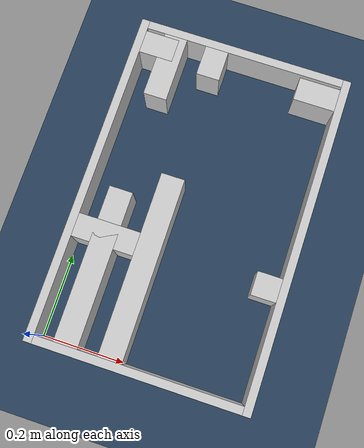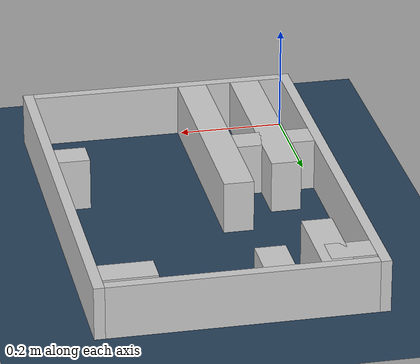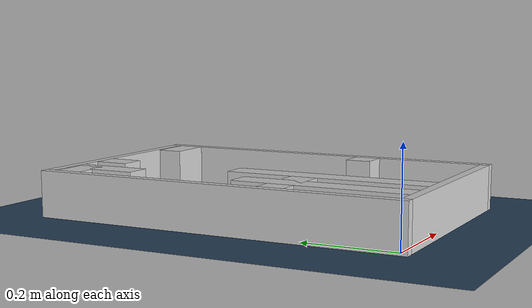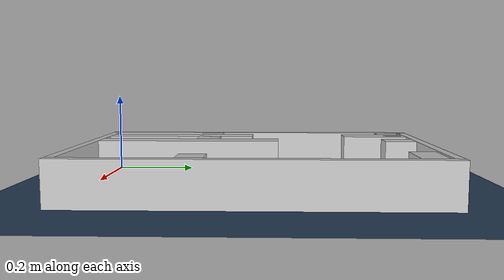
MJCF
<?xml version="1.0" ?>
<mujoco model="generated_real_template">
  <compiler angle="degree"/>
  <option timestep="0.002" integrator="implicitfast" iterations="100" cone="elliptic"/>
  <default>
    <geom density="1"/>
  </default>
  <asset>
    <texture builtin="gradient" height="3072" rgb1="0.3 0.5 0.7" rgb2="0 0 0" type="skybox" width="512"/>
    <texture builtin="checker" height="300" mark="edge" markrgb="0.8 0.8 0.8" name="groundplane" rgb1="0.2 0.3 0.4" rgb2="0.1 0.2 0.3" type="2d" width="300"/>
    <material name="groundplane" reflectance="0.2" texrepeat="5 5" texture="groundplane" texuniform="true"/>
  </asset>
  <worldbody>
    <light dir="0 0 -1" directional="true" pos="0 0 1.5"/>
    <geom name="floor" type="plane" condim="4" friction="0.5 0.005 0.001" material="groundplane" size="0 0 0.05"/>
    <body name="walls">
      <geom name="wall_boundary_left" type="box" condim="4" friction="1.0 0.005 0.0001" rgba="0.8 0.8 0.8 1" pos="-0.010000 0.387500 0.050000" euler="0 0 0.000000" size="0.010000 0.407500 0.050000"/>
      <geom name="wall_boundary_right" type="box" condim="4" friction="1.0 0.005 0.0001" rgba="0.8 0.8 0.8 1" pos="0.500000 0.387500 0.050000" euler="0 0 0.000000" size="0.010000 0.407500 0.050000"/>
      <geom name="wall_boundary_bottom" type="box" condim="4" friction="1.0 0.005 0.0001" rgba="0.8 0.8 0.8 1" pos="0.245000 -0.010000 0.050000" euler="0 0 0.000000" size="0.245000 0.010000 0.050000"/>
      <geom name="wall_boundary_top" type="box" condim="4" friction="1.0 0.005 0.0001" rgba="0.8 0.8 0.8 1" pos="0.245000 0.785000 0.050000" euler="0 0 0.000000" size="0.245000 0.010000 0.050000"/>
      <geom name="wall_inner_1_1" type="box" condim="4" friction="1.0 0.005 0.0001" rgba="0.8 0.8 0.8 1" pos="0.177940 0.220464 0.050000" euler="0 0 90.000000" size="0.220464 0.028500 0.050000"/>
      <geom name="wall_inner_1_2" type="box" condim="4" friction="1.0 0.005 0.0001" rgba="0.8 0.8 0.8 1" pos="0.177940 0.737643 0.050000" euler="0 0 90.000000" size="0.037357 0.028500 0.050000"/>
      <geom name="wall_inner_2_1" type="box" condim="4" friction="1.0 0.005 0.0001" rgba="0.8 0.8 0.8 1" pos="0.073205 0.187142 0.050000" euler="0 0 90.000000" size="0.187142 0.028500 0.050000"/>
      <geom name="wall_inner_2_2" type="box" condim="4" friction="1.0 0.005 0.0001" rgba="0.8 0.8 0.8 1" pos="0.073205 0.694397 0.050000" euler="0 0 90.000000" size="0.080603 0.028500 0.050000"/>
      <geom name="wall_inner_3_1" type="box" condim="4" friction="1.0 0.005 0.0001" rgba="0.8 0.8 0.8 1" pos="0.041484 0.739423 0.050000" euler="0 0 0.000000" size="0.041484 0.028500 0.050000"/>
      <geom name="wall_inner_3_2" type="box" condim="4" friction="1.0 0.005 0.0001" rgba="0.8 0.8 0.8 1" pos="0.439698 0.739423 0.050000" euler="0 0 0.000000" size="0.050302 0.028500 0.050000"/>
      <geom name="wall_inner_4_1" type="box" condim="4" friction="1.0 0.005 0.0001" rgba="0.8 0.8 0.8 1" pos="0.074776 0.263520 0.050000" euler="0 0 0.000000" size="0.074776 0.028500 0.050000"/>
      <geom name="wall_inner_4_2" type="box" condim="4" friction="1.0 0.005 0.0001" rgba="0.8 0.8 0.8 1" pos="0.459938 0.263520 0.050000" euler="0 0 0.000000" size="0.030062 0.028500 0.050000"/>
    </body>
  </worldbody>
</mujoco>
